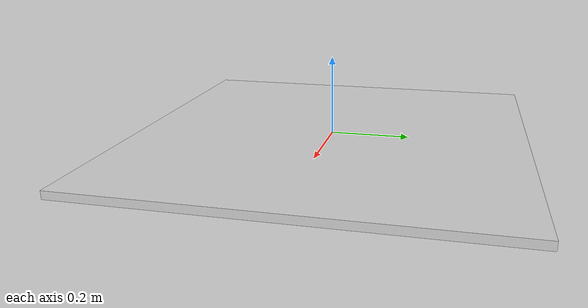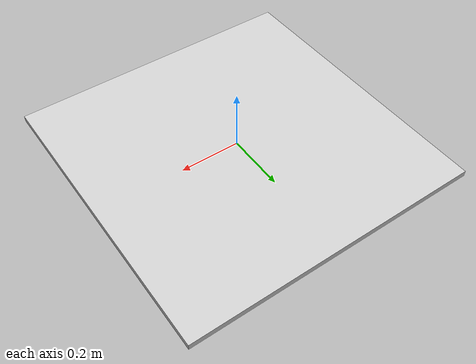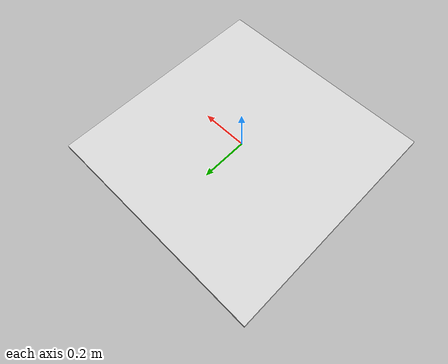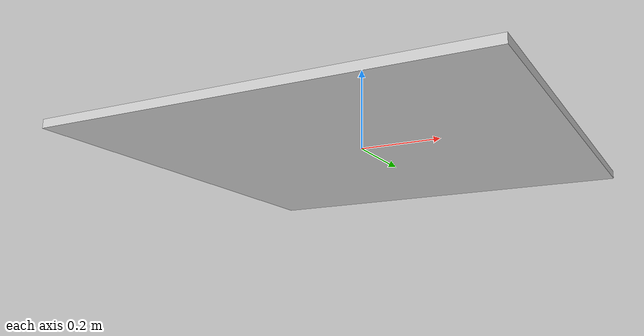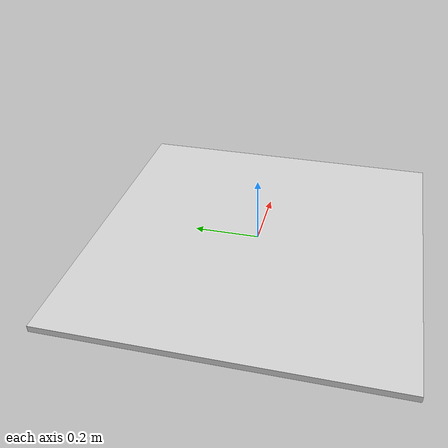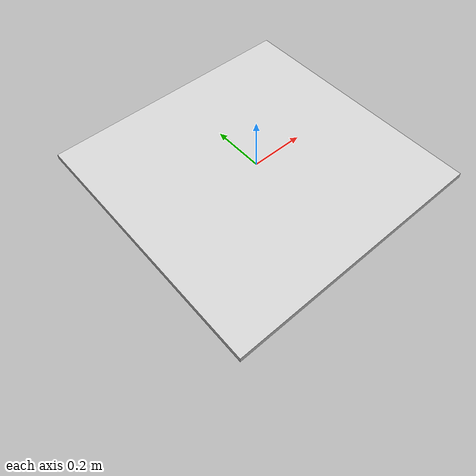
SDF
<?xml version="1.0" ?>
<sdf version="1.7">
<model name="steel_plate_1x1">
    <pose>0 0 0 0 0 0</pose>
    <static>true</static>
    <link name="link">
        <visual name="visual">
          <pose>0 0 -0.008 0 0 0</pose>
            <geometry>
                <box>
                    <size>1 1 0.02</size>
                </box>
            </geometry>
            <material>
                <ambient>0.8 0.8 0.8 1</ambient>
                <diffuse>0.8 0.8 0.8 1</diffuse>
                <specular>0.8 0.8 0.8 1</specular>
                <pbr>
                    <metal>
                        <albedo_map>materials/textures/steelplate1_albedo.png</albedo_map>
                        <ambient_occlusion_map>materials/textures/steelplate1_ao.png</ambient_occlusion_map>
                        <metalness_map>materials/textures/steelplate1_metallic.png</metalness_map>
                        <normal_map>materials/textures/steelplate1_normal-ogl.png</normal_map>
                        <roughness_map>materials/textures/steelplate1_roughness.png</roughness_map>
                        <roughness>0.2</roughness>
                        <metalness>0.9</metalness>
                    </metal>
                </pbr>
            </material>
        </visual>
    </link>
</model>
</sdf>
